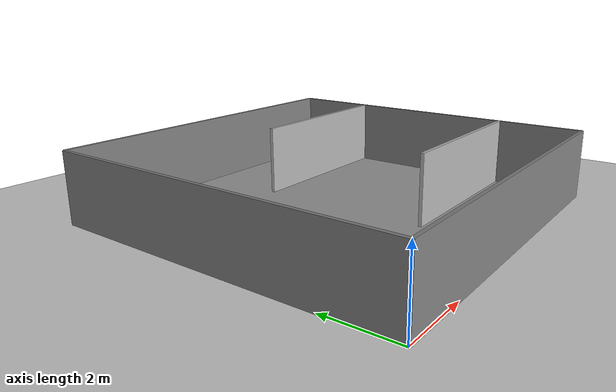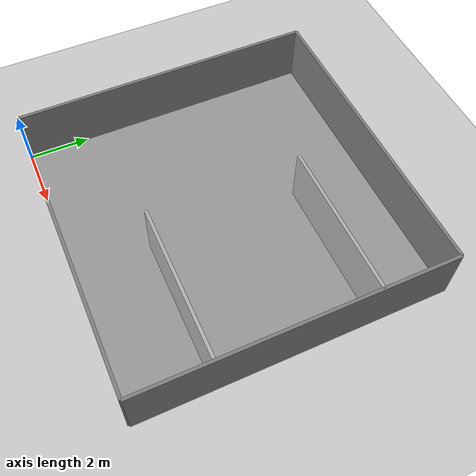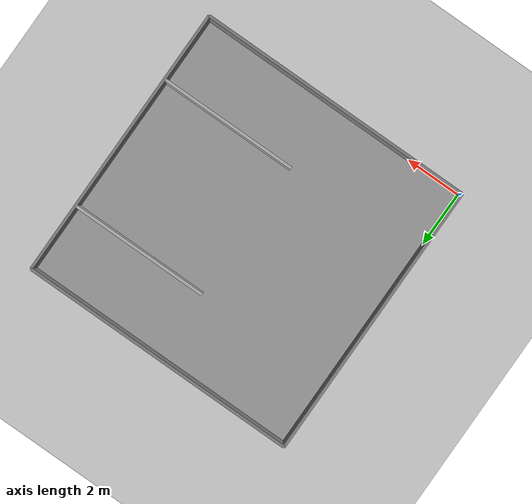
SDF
<?xml version="1.0" ?>
<sdf version="1.9">
  <world name="crazysim_mod">
    <physics type="ode">
      <max_step_size>0.001</max_step_size>
      <real_time_factor>1.0</real_time_factor>
      <real_time_update_rate>1000</real_time_update_rate>
    </physics>
    <plugin name='gz::sim::systems::Physics' filename='libgz-sim-physics-system.so'/>
    <plugin name='gz::sim::systems::UserCommands' filename='libgz-sim-user-commands-system.so'/>
    <plugin name='gz::sim::systems::SceneBroadcaster' filename='libgz-sim-scene-broadcaster-system.so'/>
    <plugin name='gz::sim::systems::Contact' filename='libgz-sim-contact-system.so'/>
    <plugin name='gz::sim::systems::Imu' filename='libgz-sim-imu-system.so'/>
    <plugin name='gz::sim::systems::AirPressure' filename='libgz-sim-air-pressure-system.so'/>
    <plugin name='gz::sim::systems::Sensors' filename='libgz-sim-sensors-system.so'>
      <render_engine>ogre2</render_engine>
    </plugin>
    <gravity>0 0 -9.80665</gravity>
    <magnetic_field>6e-06 2.3e-05 -4.2e-05</magnetic_field>
    <atmosphere type='adiabatic'/>
    <scene>
      <grid>false</grid>
      <ambient>0.4 0.4 0.4 1</ambient>
      <background>0.7 0.7 0.7 1</background>
      <shadows>true</shadows>
    </scene>
    <model name="ground_plane">
      <static>true</static>
      <link name="link">
        <collision name="collision">
          <geometry>
            <plane>
              <normal>0 0 1</normal>
              <size>100 100</size>
            </plane>
          </geometry>
        </collision>
        <visual name="visual">
          <geometry>
            <plane>
              <normal>0 0 1</normal>
              <size>100 100</size>
            </plane>
          </geometry>
          <material>
            <ambient>0.8 0.8 0.8 1</ambient>
            <diffuse>0.8 0.8 0.8 1</diffuse>
            <specular>0.8 0.8 0.8 1</specular>
          </material>
        </visual>
      </link>
    </model>
    <light type="directional" name="sun">
      <cast_shadows>true</cast_shadows>
      <pose>0 0 10 0 0 0</pose>
      <diffuse>0.8 0.8 0.8 1</diffuse>
      <specular>0.2 0.2 0.2 1</specular>
      <attenuation>
        <range>1000</range>
        <constant>0.9</constant>
        <linear>0.01</linear>
        <quadratic>0.001</quadratic>
      </attenuation>
      <direction>-0.5 0.1 -0.9</direction>
    </light>

    <!-- Add a room to the environment -->
    <model name="room">
      <static>true</static>
      <pose>5 5 0 0 0 0</pose> <!-- Adjusted to place the room with (0,0) in the left corner -->

      <!-- Floor -->
      <link name="floor">
        <collision name="collision">
          <geometry>
            <box>
              <size>10 10 0.1</size>
            </box>
          </geometry>
        </collision>
        <visual name="visual">
          <geometry>
            <box>
              <size>10 10 0.1</size>
            </box>
          </geometry>
          <material>
            <ambient>0.6 0.6 0.6 1</ambient>
            <diffuse>0.6 0.6 0.6 1</diffuse>
            <specular>0.6 0.6 0.6 1</specular>
          </material>
        </visual>
      </link>

      <!-- Wall 1 -->
      <link name="wall1">
        <pose>0 5 1 0 0 0</pose>
        <collision name="collision">
          <geometry>
            <box>
              <size>10 0.1 2</size>
            </box>
          </geometry>
        </collision>
        <visual name="visual">
          <geometry>
            <box>
              <size>10 0.1 2</size>
            </box>
          </geometry>
          <material>
            <ambient>0.5 0.5 0.5 1</ambient>
            <diffuse>0.5 0.5 0.5 1</diffuse>
            <specular>0.5 0.5 0.5 1</specular>
          </material>
        </visual>
      </link>

      <!-- Wall 2 -->
      <link name="wall2">
        <pose>0 -5 1 0 0 0</pose>
        <collision name="collision">
          <geometry>
            <box>
              <size>10 0.1 2</size>
            </box>
          </geometry>
        </collision>
        <visual name="visual">
          <geometry>
            <box>
              <size>10 0.1 2</size>
            </box>
          </geometry>
          <material>
            <ambient>0.5 0.5 0.5 1</ambient>
            <diffuse>0.5 0.5 0.5 1</diffuse>
            <specular>0.5 0.5 0.5 1</specular>
          </material>
        </visual>
      </link>

      <!-- Wall 3 -->
      <link name="wall3">
        <pose>5 0 1 0 0 0</pose>
        <collision name="collision">
          <geometry>
            <box>
              <size>0.1 10 2</size>
            </box>
          </geometry>
        </collision>
        <visual name="visual">
          <geometry>
            <box>
              <size>0.1 10 2</size>
            </box>
          </geometry>
          <material>
            <ambient>0.5 0.5 0.5 1</ambient>
            <diffuse>0.5 0.5 0.5 1</diffuse>
            <specular>0.5 0.5 0.5 1</specular>
          </material>
        </visual>
      </link>

      <!-- Wall 4 -->
      <link name="wall4">
        <pose>-5 0 1 0 0 0</pose>
        <collision name="collision">
          <geometry>
            <box>
              <size>0.1 10 2</size>
            </box>
          </geometry>
        </collision>
        <visual name="visual">
          <geometry>
            <box>
              <size>0.1 10 2</size>
            </box>
          </geometry>
          <material>
            <ambient>0.5 0.5 0.5 1</ambient>
            <diffuse>0.5 0.5 0.5 1</diffuse>
            <specular>0.5 0.5 0.5 1</specular>
          </material>
        </visual>
      </link>

      <!-- Internal Wall -->
      <link name="internal_wall_1">
        <pose>2.5 2.5 1 0 0 0</pose> <!-- Placing an internal wall within the room -->
        <collision name="collision">
          <geometry>
            <box>
              <size>5 0.1 2</size>
            </box>
          </geometry>
        </collision>
        <visual name="visual">
          <geometry>
            <box>
              <size>5 0.1 2</size>
            </box>
          </geometry>
          <material>
            <ambient>0.7 0.7 0.7 1</ambient>
            <diffuse>0.7 0.7 0.7 1</diffuse>
            <specular>0.7 0.7 0.7 1</specular>
          </material>
        </visual>
      </link>

      <!-- Internal Wall -->
      <link name="internal_wall_2">
        <pose>2.5 -2.5 1 0 0 0</pose> <!-- Placing an internal wall within the room -->
        <collision name="collision">
          <geometry>
            <box>
              <size>5 0.1 2</size>
            </box>
          </geometry>
        </collision>
        <visual name="visual">
          <geometry>
            <box>
              <size>5 0.1 2</size>
            </box>
          </geometry>
          <material>
            <ambient>0.7 0.7 0.7 1</ambient>
            <diffuse>0.7 0.7 0.7 1</diffuse>
            <specular>0.7 0.7 0.7 1</specular>
          </material>
        </visual>
      </link>

    </model>
  </world>
</sdf>
